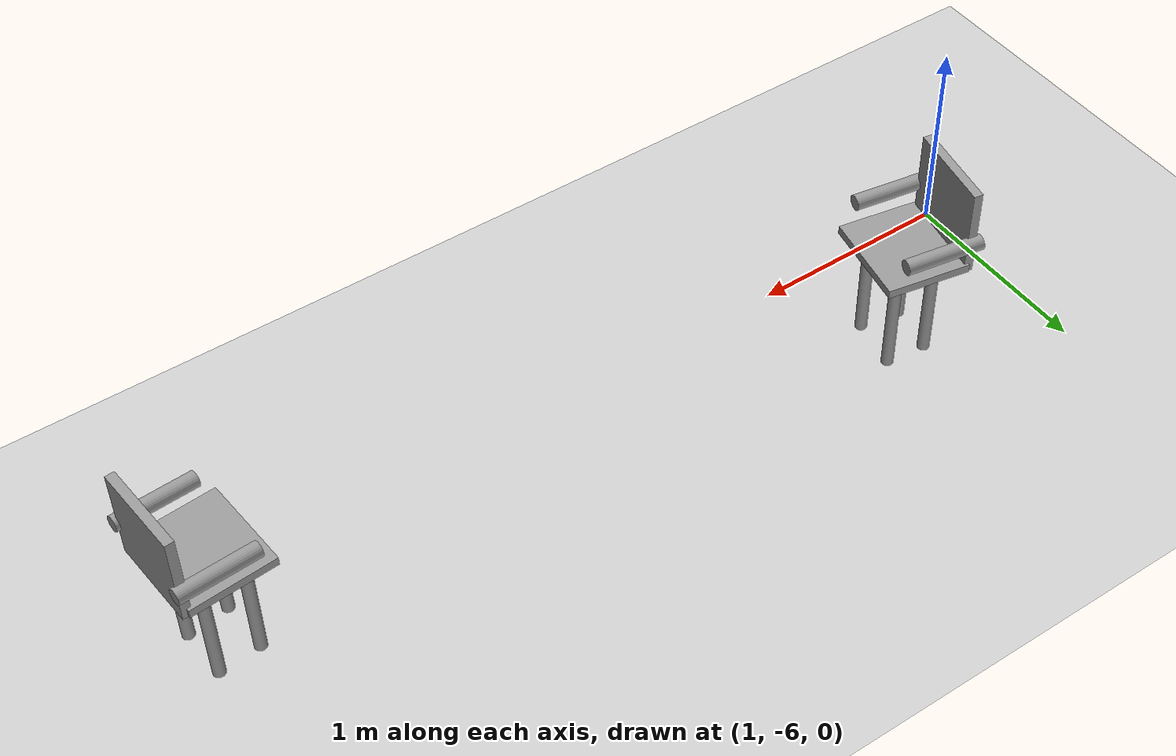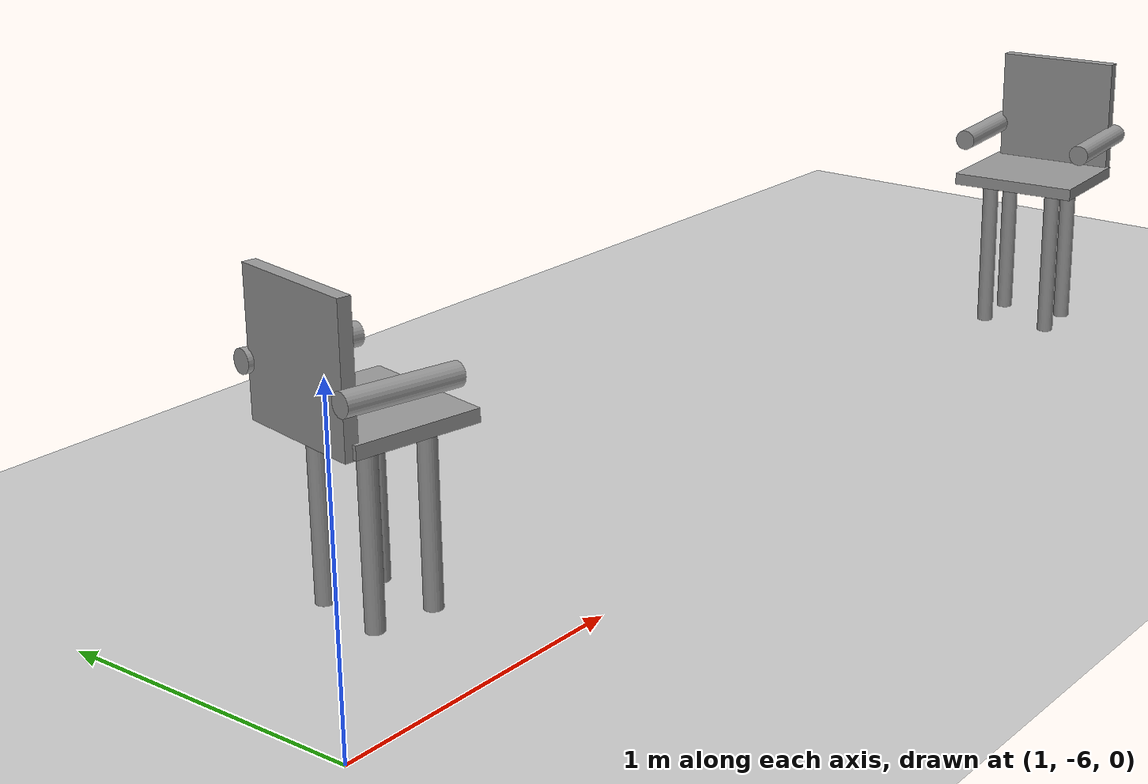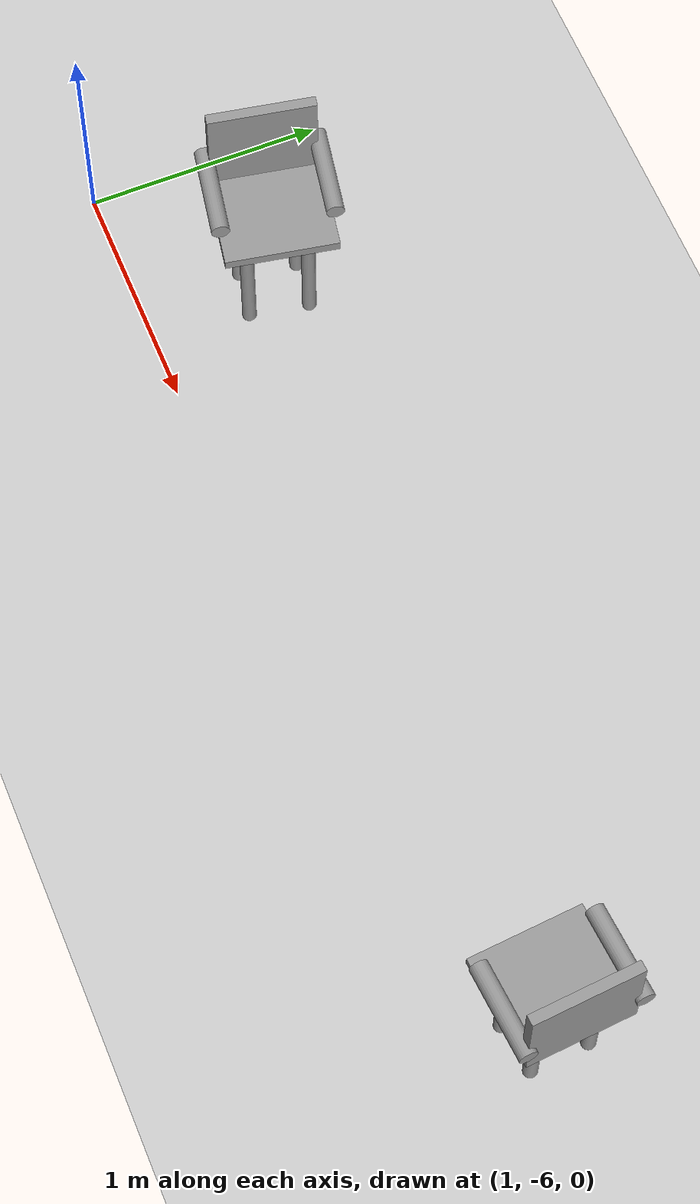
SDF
<sdf version="1.6">
 <world name="default">
  <model name="ground_plane">
   <static>1</static>
   <link name="link">
    <collision name="collision">
     <geometry><plane><normal>0 0 1</normal><size>100 100</size></plane></geometry>
     <surface>
      <contact><collide_bitmask>65535</collide_bitmask></contact>
      <friction><ode><mu>100</mu><mu2>50</mu2></ode></friction>
     </surface>
    </collision>
    <visual name="visual">
     <cast_shadows>0</cast_shadows>
     <geometry><plane><normal>0 0 1</normal><size>100 100</size></plane></geometry>
     <material>
      <script><uri>file://media/materials/scripts/gazebo.material</uri><name>Gazebo/Grey</name></script>
     </material>
    </visual>
   </link>
  </model>
  <model name="chair_clone_0_clone_2">
   <link name="link_4">
    <inertial>
     <mass>0.00194051</mass>
     <inertia>
      <ixx>5.14044e-05</ixx>
      <ixy>0</ixy>
      <ixz>0</ixz>
      <iyy>5.14044e-05</iyy>
      <iyz>0</iyz>
      <izz>8.34973e-07</izz>
     </inertia>
    </inertial>
    <pose>-0.140129 -0.127166 -0.209129 0 -0 0</pose>
    <visual name="visual">
     <geometry><cylinder><radius>0.0293355</radius><length>0.561516</length></cylinder></geometry>
     <material>
      <lighting>1</lighting>
      <script><uri>file://media/materials/scripts/gazebo.material</uri><name>Gazebo/Grey</name></script>
      <emissive>0 0 0 1</emissive>
     </material>
    </visual>
    <collision name="collision">
     <geometry><cylinder><radius>0.029336</radius><length>0.561516</length></cylinder></geometry>
     <surface>
      <friction>
       <ode><mu>1</mu><mu2>1</mu2><fdir1>0 0 0</fdir1><slip1>0</slip1><slip2>0</slip2></ode>
       <torsional>
        <coefficient>1</coefficient>
        <patch_radius>0</patch_radius>
        <surface_radius>0</surface_radius>
        <use_patch_radius>1</use_patch_radius>
        <ode><slip>0</slip></ode>
       </torsional>
      </friction>
      <bounce><restitution_coefficient>0</restitution_coefficient><threshold>1e+06</threshold></bounce>
      <contact>
       <collide_without_contact>0</collide_without_contact>
       <collide_without_contact_bitmask>1</collide_without_contact_bitmask>
       <collide_bitmask>1</collide_bitmask>
       <ode>
        <soft_cfm>0</soft_cfm>
        <soft_erp>0.2</soft_erp>
        <kp>1e+13</kp>
        <kd>1</kd>
        <max_vel>0.01</max_vel>
        <min_depth>0</min_depth>
       </ode>
       <bullet>
        <split_impulse>1</split_impulse>
        <split_impulse_penetration_threshold>-0.01</split_impulse_penetration_threshold>
        <soft_cfm>0</soft_cfm>
        <soft_erp>0.2</soft_erp>
        <kp>1e+13</kp>
        <kd>1</kd>
       </bullet>
      </contact>
     </surface>
    </collision>
   </link>
   <link name="link_4_clone">
    <inertial>
     <mass>0.00194051</mass>
     <inertia>
      <ixx>5.14044e-05</ixx>
      <ixy>0</ixy>
      <ixz>0</ixz>
      <iyy>5.14044e-05</iyy>
      <iyz>0</iyz>
      <izz>8.34973e-07</izz>
     </inertia>
    </inertial>
    <pose>-0.139565 0.126187 -0.209129 0 -0 0</pose>
    <visual name="visual">
     <geometry><cylinder><radius>0.0293355</radius><length>0.561516</length></cylinder></geometry>
     <material>
      <lighting>1</lighting>
      <script><uri>file://media/materials/scripts/gazebo.material</uri><name>Gazebo/Grey</name></script>
      <shader type="pixel"/>
      <emissive>0 0 0 1</emissive>
     </material>
    </visual>
    <collision name="collision">
     <geometry><cylinder><radius>0.029336</radius><length>0.561516</length></cylinder></geometry>
     <surface>
      <friction>
       <ode><mu>1</mu><mu2>1</mu2><fdir1>0 0 0</fdir1><slip1>0</slip1><slip2>0</slip2></ode>
       <torsional>
        <coefficient>1</coefficient>
        <patch_radius>0</patch_radius>
        <surface_radius>0</surface_radius>
        <use_patch_radius>1</use_patch_radius>
        <ode><slip>0</slip></ode>
       </torsional>
      </friction>
      <bounce><restitution_coefficient>0</restitution_coefficient><threshold>1e+06</threshold></bounce>
      <contact>
       <collide_without_contact>0</collide_without_contact>
       <collide_without_contact_bitmask>1</collide_without_contact_bitmask>
       <collide_bitmask>1</collide_bitmask>
       <ode>
        <soft_cfm>0</soft_cfm>
        <soft_erp>0.2</soft_erp>
        <kp>1e+13</kp>
        <kd>1</kd>
        <max_vel>0.01</max_vel>
        <min_depth>0</min_depth>
       </ode>
       <bullet>
        <split_impulse>1</split_impulse>
        <split_impulse_penetration_threshold>-0.01</split_impulse_penetration_threshold>
        <soft_cfm>0</soft_cfm>
        <soft_erp>0.2</soft_erp>
        <kp>1e+13</kp>
        <kd>1</kd>
       </bullet>
      </contact>
     </surface>
    </collision>
   </link>
   <link name="link_4_clone_0">
    <inertial>
     <mass>0.00194051</mass>
     <inertia>
      <ixx>5.14044e-05</ixx>
      <ixy>0</ixy>
      <ixz>0</ixz>
      <iyy>5.14044e-05</iyy>
      <iyz>0</iyz>
      <izz>8.34973e-07</izz>
     </inertia>
    </inertial>
    <pose>0.062929 0.13105 -0.209129 0 -0 0</pose>
    <visual name="visual">
     <geometry><cylinder><radius>0.0293355</radius><length>0.561516</length></cylinder></geometry>
     <material>
      <lighting>1</lighting>
      <script><uri>file://media/materials/scripts/gazebo.material</uri><name>Gazebo/Grey</name></script>
      <shader type="pixel"/>
      <emissive>0 0 0 1</emissive>
     </material>
    </visual>
    <collision name="collision">
     <geometry><cylinder><radius>0.029336</radius><length>0.561516</length></cylinder></geometry>
     <surface>
      <friction>
       <ode><mu>1</mu><mu2>1</mu2><fdir1>0 0 0</fdir1><slip1>0</slip1><slip2>0</slip2></ode>
       <torsional>
        <coefficient>1</coefficient>
        <patch_radius>0</patch_radius>
        <surface_radius>0</surface_radius>
        <use_patch_radius>1</use_patch_radius>
        <ode><slip>0</slip></ode>
       </torsional>
      </friction>
      <bounce><restitution_coefficient>0</restitution_coefficient><threshold>1e+06</threshold></bounce>
      <contact>
       <collide_without_contact>0</collide_without_contact>
       <collide_without_contact_bitmask>1</collide_without_contact_bitmask>
       <collide_bitmask>1</collide_bitmask>
       <ode>
        <soft_cfm>0</soft_cfm>
        <soft_erp>0.2</soft_erp>
        <kp>1e+13</kp>
        <kd>1</kd>
        <max_vel>0.01</max_vel>
        <min_depth>0</min_depth>
       </ode>
       <bullet>
        <split_impulse>1</split_impulse>
        <split_impulse_penetration_threshold>-0.01</split_impulse_penetration_threshold>
        <soft_cfm>0</soft_cfm>
        <soft_erp>0.2</soft_erp>
        <kp>1e+13</kp>
        <kd>1</kd>
       </bullet>
      </contact>
     </surface>
    </collision>
   </link>
   <link name="link_4_clone_1">
    <inertial>
     <mass>0.00194051</mass>
     <inertia>
      <ixx>5.14044e-05</ixx>
      <ixy>0</ixy>
      <ixz>0</ixz>
      <iyy>5.14044e-05</iyy>
      <iyz>0</iyz>
      <izz>8.34973e-07</izz>
     </inertia>
    </inertial>
    <pose>0.061641 -0.111934 -0.209129 0 -0 0</pose>
    <visual name="visual">
     <geometry><cylinder><radius>0.0293355</radius><length>0.561516</length></cylinder></geometry>
     <material>
      <lighting>1</lighting>
      <script><uri>file://media/materials/scripts/gazebo.material</uri><name>Gazebo/Grey</name></script>
      <shader type="pixel"/>
      <emissive>0 0 0 1</emissive>
     </material>
    </visual>
    <collision name="collision">
     <geometry><cylinder><radius>0.029336</radius><length>0.561516</length></cylinder></geometry>
     <surface>
      <friction>
       <ode><mu>1</mu><mu2>1</mu2><fdir1>0 0 0</fdir1><slip1>0</slip1><slip2>0</slip2></ode>
       <torsional>
        <coefficient>1</coefficient>
        <patch_radius>0</patch_radius>
        <surface_radius>0</surface_radius>
        <use_patch_radius>1</use_patch_radius>
        <ode><slip>0</slip></ode>
       </torsional>
      </friction>
      <bounce><restitution_coefficient>0</restitution_coefficient><threshold>1e+06</threshold></bounce>
      <contact>
       <collide_without_contact>0</collide_without_contact>
       <collide_without_contact_bitmask>1</collide_without_contact_bitmask>
       <collide_bitmask>1</collide_bitmask>
       <ode>
        <soft_cfm>0</soft_cfm>
        <soft_erp>0.2</soft_erp>
        <kp>1e+13</kp>
        <kd>1</kd>
        <max_vel>0.01</max_vel>
        <min_depth>0</min_depth>
       </ode>
       <bullet>
        <split_impulse>1</split_impulse>
        <split_impulse_penetration_threshold>-0.01</split_impulse_penetration_threshold>
        <soft_cfm>0</soft_cfm>
        <soft_erp>0.2</soft_erp>
        <kp>1e+13</kp>
        <kd>1</kd>
       </bullet>
      </contact>
     </surface>
    </collision>
   </link>
   <link name="link_5">
    <inertial>
     <mass>0.00816884</mass>
     <inertia>
      <ixx>0.00015002</ixx>
      <ixy>0</ixy>
      <ixz>0</ixz>
      <iyy>0.000115328</iyy>
      <iyz>0</iyz>
      <izz>0.000262862</izz>
     </inertia>
    </inertial>
    <pose>-0.041662 -0.005028 0.089077 0 -0 0</pose>
    <visual name="visual">
     <geometry><box><size>0.409378 0.467496 0.042729</size></box></geometry>
     <material>
      <lighting>1</lighting>
      <script><uri>file://media/materials/scripts/gazebo.material</uri><name>Gazebo/Grey</name></script>
      <emissive>0 0 0 1</emissive>
     </material>
    </visual>
    <collision name="collision">
     <geometry><box><size>0.409378 0.467496 0.042729</size></box></geometry>
     <surface>
      <friction>
       <ode><mu>1</mu><mu2>1</mu2><fdir1>0 0 0</fdir1><slip1>0</slip1><slip2>0</slip2></ode>
       <torsional>
        <coefficient>1</coefficient>
        <patch_radius>0</patch_radius>
        <surface_radius>0</surface_radius>
        <use_patch_radius>1</use_patch_radius>
        <ode><slip>0</slip></ode>
       </torsional>
      </friction>
      <bounce><restitution_coefficient>0</restitution_coefficient><threshold>1e+06</threshold></bounce>
      <contact>
       <collide_without_contact>0</collide_without_contact>
       <collide_without_contact_bitmask>1</collide_without_contact_bitmask>
       <collide_bitmask>1</collide_bitmask>
       <ode>
        <soft_cfm>0</soft_cfm>
        <soft_erp>0.2</soft_erp>
        <kp>1e+13</kp>
        <kd>1</kd>
        <max_vel>0.01</max_vel>
        <min_depth>0</min_depth>
       </ode>
       <bullet>
        <split_impulse>1</split_impulse>
        <split_impulse_penetration_threshold>-0.01</split_impulse_penetration_threshold>
        <soft_cfm>0</soft_cfm>
        <soft_erp>0.2</soft_erp>
        <kp>1e+13</kp>
        <kd>1</kd>
       </bullet>
      </contact>
     </surface>
    </collision>
   </link>
   <link name="link_6">
    <inertial>
     <mass>0.00855687</mass>
     <inertia>
      <ixx>0.000285159</ixx>
      <ixy>0</ixy>
      <ixz>0</ixz>
      <iyy>0.000146983</iyy>
      <iyz>0</iyz>
      <izz>0.000140925</izz>
     </inertia>
    </inertial>
    <pose>0.165697 -0.006458 0.287866 0 -0 0</pose>
    <visual name="visual">
     <geometry><box><size>0.0439 0.442383 0.451884</size></box></geometry>
     <material>
      <lighting>1</lighting>
      <script><uri>file://media/materials/scripts/gazebo.material</uri><name>Gazebo/Grey</name></script>
      <emissive>0 0 0 1</emissive>
     </material>
    </visual>
    <collision name="collision">
     <geometry><box><size>0.0439 0.442383 0.451884</size></box></geometry>
     <surface>
      <friction>
       <ode><mu>1</mu><mu2>1</mu2><fdir1>0 0 0</fdir1><slip1>0</slip1><slip2>0</slip2></ode>
       <torsional>
        <coefficient>1</coefficient>
        <patch_radius>0</patch_radius>
        <surface_radius>0</surface_radius>
        <use_patch_radius>1</use_patch_radius>
        <ode><slip>0</slip></ode>
       </torsional>
      </friction>
      <bounce><restitution_coefficient>0</restitution_coefficient><threshold>1e+06</threshold></bounce>
      <contact>
       <collide_without_contact>0</collide_without_contact>
       <collide_without_contact_bitmask>1</collide_without_contact_bitmask>
       <collide_bitmask>1</collide_bitmask>
       <ode>
        <soft_cfm>0</soft_cfm>
        <soft_erp>0.2</soft_erp>
        <kp>1e+13</kp>
        <kd>1</kd>
        <max_vel>0.01</max_vel>
        <min_depth>0</min_depth>
       </ode>
       <bullet>
        <split_impulse>1</split_impulse>
        <split_impulse_penetration_threshold>-0.01</split_impulse_penetration_threshold>
        <soft_cfm>0</soft_cfm>
        <soft_erp>0.2</soft_erp>
        <kp>1e+13</kp>
        <kd>1</kd>
       </bullet>
      </contact>
     </surface>
    </collision>
   </link>
   <link name="link_7">
    <inertial>
     <mass>0.00209129</mass>
     <inertia>
      <ixx>2.57536e-05</ixx>
      <ixy>0</ixy>
      <ixz>0</ixz>
      <iyy>2.57536e-05</iyy>
      <iyz>0</iyz>
      <izz>1.44551e-06</izz>
     </inertia>
    </inertial>
    <pose>0.0147 0.228665 0.230372 0 1.55081 0</pose>
    <visual name="visual">
     <geometry><cylinder><radius>0.0371808</radius><length>0.378984</length></cylinder></geometry>
     <material>
      <lighting>1</lighting>
      <script><uri>file://media/materials/scripts/gazebo.material</uri><name>Gazebo/Grey</name></script>
      <emissive>0 0 0 1</emissive>
     </material>
    </visual>
    <collision name="collision">
     <geometry><cylinder><radius>0.037181</radius><length>0.378984</length></cylinder></geometry>
     <surface>
      <friction>
       <ode><mu>1</mu><mu2>1</mu2><fdir1>0 0 0</fdir1><slip1>0</slip1><slip2>0</slip2></ode>
       <torsional>
        <coefficient>1</coefficient>
        <patch_radius>0</patch_radius>
        <surface_radius>0</surface_radius>
        <use_patch_radius>1</use_patch_radius>
        <ode><slip>0</slip></ode>
       </torsional>
      </friction>
      <bounce><restitution_coefficient>0</restitution_coefficient><threshold>1e+06</threshold></bounce>
      <contact>
       <collide_without_contact>0</collide_without_contact>
       <collide_without_contact_bitmask>1</collide_without_contact_bitmask>
       <collide_bitmask>1</collide_bitmask>
       <ode>
        <soft_cfm>0</soft_cfm>
        <soft_erp>0.2</soft_erp>
        <kp>1e+13</kp>
        <kd>1</kd>
        <max_vel>0.01</max_vel>
        <min_depth>0</min_depth>
       </ode>
       <bullet>
        <split_impulse>1</split_impulse>
        <split_impulse_penetration_threshold>-0.01</split_impulse_penetration_threshold>
        <soft_cfm>0</soft_cfm>
        <soft_erp>0.2</soft_erp>
        <kp>1e+13</kp>
        <kd>1</kd>
       </bullet>
      </contact>
     </surface>
    </collision>
   </link>
   <link name="link_7_clone">
    <inertial>
     <mass>0.00209129</mass>
     <inertia>
      <ixx>2.57536e-05</ixx>
      <ixy>0</ixy>
      <ixz>0</ixz>
      <iyy>2.57536e-05</iyy>
      <iyz>0</iyz>
      <izz>1.44551e-06</izz>
     </inertia>
    </inertial>
    <pose>0.01639 -0.235319 0.229201 0 1.55081 0</pose>
    <visual name="visual">
     <geometry><cylinder><radius>0.0371808</radius><length>0.378984</length></cylinder></geometry>
     <material>
      <lighting>1</lighting>
      <script><uri>file://media/materials/scripts/gazebo.material</uri><name>Gazebo/Grey</name></script>
      <shader type="pixel"/>
      <emissive>0 0 0 1</emissive>
     </material>
    </visual>
    <collision name="collision">
     <geometry><cylinder><radius>0.037181</radius><length>0.378984</length></cylinder></geometry>
     <surface>
      <friction>
       <ode><mu>1</mu><mu2>1</mu2><fdir1>0 0 0</fdir1><slip1>0</slip1><slip2>0</slip2></ode>
       <torsional>
        <coefficient>1</coefficient>
        <patch_radius>0</patch_radius>
        <surface_radius>0</surface_radius>
        <use_patch_radius>1</use_patch_radius>
        <ode><slip>0</slip></ode>
       </torsional>
      </friction>
      <bounce><restitution_coefficient>0</restitution_coefficient><threshold>1e+06</threshold></bounce>
      <contact>
       <collide_without_contact>0</collide_without_contact>
       <collide_without_contact_bitmask>1</collide_without_contact_bitmask>
       <collide_bitmask>1</collide_bitmask>
       <ode>
        <soft_cfm>0</soft_cfm>
        <soft_erp>0.2</soft_erp>
        <kp>1e+13</kp>
        <kd>1</kd>
        <max_vel>0.01</max_vel>
        <min_depth>0</min_depth>
       </ode>
       <bullet>
        <split_impulse>1</split_impulse>
        <split_impulse_penetration_threshold>-0.01</split_impulse_penetration_threshold>
        <soft_cfm>0</soft_cfm>
        <soft_erp>0.2</soft_erp>
        <kp>1e+13</kp>
        <kd>1</kd>
       </bullet>
      </contact>
     </surface>
    </collision>
   </link>
   <joint name="link_5_JOINT_2" type="fixed">
    <parent>link_5</parent>
    <child>link_4_clone_1</child>
    <physics>
     <ode><limit><cfm>0</cfm><erp>0.2</erp></limit><suspension><cfm>0</cfm><erp>0.2</erp></suspension></ode>
    </physics>
   </joint>
   <joint name="link_5_JOINT_3" type="fixed">
    <parent>link_5</parent>
    <child>link_4</child>
    <physics>
     <ode><limit><cfm>0</cfm><erp>0.2</erp></limit><suspension><cfm>0</cfm><erp>0.2</erp></suspension></ode>
    </physics>
   </joint>
   <joint name="link_5_JOINT_4" type="fixed">
    <parent>link_5</parent>
    <child>link_4_clone_0</child>
    <physics>
     <ode><limit><cfm>0</cfm><erp>0.2</erp></limit><suspension><cfm>0</cfm><erp>0.2</erp></suspension></ode>
    </physics>
   </joint>
   <joint name="link_5_JOINT_5" type="fixed">
    <parent>link_5</parent>
    <child>link_4_clone</child>
    <physics>
     <ode><limit><cfm>0</cfm><erp>0.2</erp></limit><suspension><cfm>0</cfm><erp>0.2</erp></suspension></ode>
    </physics>
   </joint>
   <joint name="link_5_JOINT_6" type="fixed">
    <parent>link_5</parent>
    <child>link_6</child>
    <physics>
     <ode><limit><cfm>0</cfm><erp>0.2</erp></limit><suspension><cfm>0</cfm><erp>0.2</erp></suspension></ode>
    </physics>
   </joint>
   <joint name="link_5_JOINT_7" type="fixed">
    <parent>link_5</parent>
    <child>link_7</child>
    <physics>
     <ode><limit><cfm>0</cfm><erp>0.2</erp></limit><suspension><cfm>0</cfm><erp>0.2</erp></suspension></ode>
    </physics>
   </joint>
   <joint name="link_5_JOINT_8" type="fixed">
    <parent>link_5</parent>
    <child>link_7_clone</child>
    <physics>
     <ode><limit><cfm>0</cfm><erp>0.2</erp></limit><suspension><cfm>0</cfm><erp>0.2</erp></suspension></ode>
    </physics>
   </joint>
   <static>0</static>
   <pose>1.64641 -5.43878 0.489878 1e-06 3.1e-05 2.95907</pose>
  </model>
  <model name="chair_clone_7">
   <link name="link_4">
    <inertial>
     <mass>0.00194051</mass>
     <inertia>
      <ixx>5.14044e-05</ixx>
      <ixy>0</ixy>
      <ixz>0</ixz>
      <iyy>5.14044e-05</iyy>
      <iyz>0</iyz>
      <izz>8.34973e-07</izz>
     </inertia>
    </inertial>
    <pose>-0.140129 -0.127166 -0.209129 0 -0 0</pose>
    <visual name="visual">
     <geometry><cylinder><radius>0.0293355</radius><length>0.561516</length></cylinder></geometry>
     <material>
      <lighting>1</lighting>
      <script><uri>file://media/materials/scripts/gazebo.material</uri><name>Gazebo/Grey</name></script>
      <emissive>0 0 0 1</emissive>
     </material>
    </visual>
    <collision name="collision">
     <geometry><cylinder><radius>0.029336</radius><length>0.561516</length></cylinder></geometry>
     <surface>
      <friction>
       <ode><mu>1</mu><mu2>1</mu2><fdir1>0 0 0</fdir1><slip1>0</slip1><slip2>0</slip2></ode>
       <torsional>
        <coefficient>1</coefficient>
        <patch_radius>0</patch_radius>
        <surface_radius>0</surface_radius>
        <use_patch_radius>1</use_patch_radius>
        <ode><slip>0</slip></ode>
       </torsional>
      </friction>
      <bounce><restitution_coefficient>0</restitution_coefficient><threshold>1e+06</threshold></bounce>
      <contact>
       <collide_without_contact>0</collide_without_contact>
       <collide_without_contact_bitmask>1</collide_without_contact_bitmask>
       <collide_bitmask>1</collide_bitmask>
       <ode>
        <soft_cfm>0</soft_cfm>
        <soft_erp>0.2</soft_erp>
        <kp>1e+13</kp>
        <kd>1</kd>
        <max_vel>0.01</max_vel>
        <min_depth>0</min_depth>
       </ode>
       <bullet>
        <split_impulse>1</split_impulse>
        <split_impulse_penetration_threshold>-0.01</split_impulse_penetration_threshold>
        <soft_cfm>0</soft_cfm>
        <soft_erp>0.2</soft_erp>
        <kp>1e+13</kp>
        <kd>1</kd>
       </bullet>
      </contact>
     </surface>
    </collision>
   </link>
   <link name="link_4_clone">
    <inertial>
     <mass>0.00194051</mass>
     <inertia>
      <ixx>5.14044e-05</ixx>
      <ixy>0</ixy>
      <ixz>0</ixz>
      <iyy>5.14044e-05</iyy>
      <iyz>0</iyz>
      <izz>8.34973e-07</izz>
     </inertia>
    </inertial>
    <pose>-0.139565 0.126187 -0.209129 0 -0 0</pose>
    <visual name="visual">
     <geometry><cylinder><radius>0.0293355</radius><length>0.561516</length></cylinder></geometry>
     <material>
      <lighting>1</lighting>
      <script><uri>file://media/materials/scripts/gazebo.material</uri><name>Gazebo/Grey</name></script>
      <shader type="pixel"/>
      <emissive>0 0 0 1</emissive>
     </material>
    </visual>
    <collision name="collision">
     <geometry><cylinder><radius>0.029336</radius><length>0.561516</length></cylinder></geometry>
     <surface>
      <friction>
       <ode><mu>1</mu><mu2>1</mu2><fdir1>0 0 0</fdir1><slip1>0</slip1><slip2>0</slip2></ode>
       <torsional>
        <coefficient>1</coefficient>
        <patch_radius>0</patch_radius>
        <surface_radius>0</surface_radius>
        <use_patch_radius>1</use_patch_radius>
        <ode><slip>0</slip></ode>
       </torsional>
      </friction>
      <bounce><restitution_coefficient>0</restitution_coefficient><threshold>1e+06</threshold></bounce>
      <contact>
       <collide_without_contact>0</collide_without_contact>
       <collide_without_contact_bitmask>1</collide_without_contact_bitmask>
       <collide_bitmask>1</collide_bitmask>
       <ode>
        <soft_cfm>0</soft_cfm>
        <soft_erp>0.2</soft_erp>
        <kp>1e+13</kp>
        <kd>1</kd>
        <max_vel>0.01</max_vel>
        <min_depth>0</min_depth>
       </ode>
       <bullet>
        <split_impulse>1</split_impulse>
        <split_impulse_penetration_threshold>-0.01</split_impulse_penetration_threshold>
        <soft_cfm>0</soft_cfm>
        <soft_erp>0.2</soft_erp>
        <kp>1e+13</kp>
        <kd>1</kd>
       </bullet>
      </contact>
     </surface>
    </collision>
   </link>
   <link name="link_4_clone_0">
    <inertial>
     <mass>0.00194051</mass>
     <inertia>
      <ixx>5.14044e-05</ixx>
      <ixy>0</ixy>
      <ixz>0</ixz>
      <iyy>5.14044e-05</iyy>
      <iyz>0</iyz>
      <izz>8.34973e-07</izz>
     </inertia>
    </inertial>
    <pose>0.062929 0.13105 -0.209129 0 -0 0</pose>
    <visual name="visual">
     <geometry><cylinder><radius>0.0293355</radius><length>0.561516</length></cylinder></geometry>
     <material>
      <lighting>1</lighting>
      <script><uri>file://media/materials/scripts/gazebo.material</uri><name>Gazebo/Grey</name></script>
      <shader type="pixel"/>
      <emissive>0 0 0 1</emissive>
     </material>
    </visual>
    <collision name="collision">
     <geometry><cylinder><radius>0.029336</radius><length>0.561516</length></cylinder></geometry>
     <surface>
      <friction>
       <ode><mu>1</mu><mu2>1</mu2><fdir1>0 0 0</fdir1><slip1>0</slip1><slip2>0</slip2></ode>
       <torsional>
        <coefficient>1</coefficient>
        <patch_radius>0</patch_radius>
        <surface_radius>0</surface_radius>
        <use_patch_radius>1</use_patch_radius>
        <ode><slip>0</slip></ode>
       </torsional>
      </friction>
      <bounce><restitution_coefficient>0</restitution_coefficient><threshold>1e+06</threshold></bounce>
      <contact>
       <collide_without_contact>0</collide_without_contact>
       <collide_without_contact_bitmask>1</collide_without_contact_bitmask>
       <collide_bitmask>1</collide_bitmask>
       <ode>
        <soft_cfm>0</soft_cfm>
        <soft_erp>0.2</soft_erp>
        <kp>1e+13</kp>
        <kd>1</kd>
        <max_vel>0.01</max_vel>
        <min_depth>0</min_depth>
       </ode>
       <bullet>
        <split_impulse>1</split_impulse>
        <split_impulse_penetration_threshold>-0.01</split_impulse_penetration_threshold>
        <soft_cfm>0</soft_cfm>
        <soft_erp>0.2</soft_erp>
        <kp>1e+13</kp>
        <kd>1</kd>
       </bullet>
      </contact>
     </surface>
    </collision>
   </link>
   <link name="link_4_clone_1">
    <inertial>
     <mass>0.00194051</mass>
     <inertia>
      <ixx>5.14044e-05</ixx>
      <ixy>0</ixy>
      <ixz>0</ixz>
      <iyy>5.14044e-05</iyy>
      <iyz>0</iyz>
      <izz>8.34973e-07</izz>
     </inertia>
    </inertial>
    <pose>0.061641 -0.111934 -0.209129 0 -0 0</pose>
    <visual name="visual">
     <geometry><cylinder><radius>0.0293355</radius><length>0.561516</length></cylinder></geometry>
     <material>
      <lighting>1</lighting>
      <script><uri>file://media/materials/scripts/gazebo.material</uri><name>Gazebo/Grey</name></script>
      <shader type="pixel"/>
      <emissive>0 0 0 1</emissive>
     </material>
    </visual>
    <collision name="collision">
     <geometry><cylinder><radius>0.029336</radius><length>0.561516</length></cylinder></geometry>
     <surface>
      <friction>
       <ode><mu>1</mu><mu2>1</mu2><fdir1>0 0 0</fdir1><slip1>0</slip1><slip2>0</slip2></ode>
       <torsional>
        <coefficient>1</coefficient>
        <patch_radius>0</patch_radius>
        <surface_radius>0</surface_radius>
        <use_patch_radius>1</use_patch_radius>
        <ode><slip>0</slip></ode>
       </torsional>
      </friction>
      <bounce><restitution_coefficient>0</restitution_coefficient><threshold>1e+06</threshold></bounce>
      <contact>
       <collide_without_contact>0</collide_without_contact>
       <collide_without_contact_bitmask>1</collide_without_contact_bitmask>
       <collide_bitmask>1</collide_bitmask>
       <ode>
        <soft_cfm>0</soft_cfm>
        <soft_erp>0.2</soft_erp>
        <kp>1e+13</kp>
        <kd>1</kd>
        <max_vel>0.01</max_vel>
        <min_depth>0</min_depth>
       </ode>
       <bullet>
        <split_impulse>1</split_impulse>
        <split_impulse_penetration_threshold>-0.01</split_impulse_penetration_threshold>
        <soft_cfm>0</soft_cfm>
        <soft_erp>0.2</soft_erp>
        <kp>1e+13</kp>
        <kd>1</kd>
       </bullet>
      </contact>
     </surface>
    </collision>
   </link>
   <link name="link_5">
    <inertial>
     <mass>0.00816884</mass>
     <inertia>
      <ixx>0.00015002</ixx>
      <ixy>0</ixy>
      <ixz>0</ixz>
      <iyy>0.000115328</iyy>
      <iyz>0</iyz>
      <izz>0.000262862</izz>
     </inertia>
    </inertial>
    <pose>-0.041662 -0.005028 0.089077 0 -0 0</pose>
    <visual name="visual">
     <geometry><box><size>0.409378 0.467496 0.042729</size></box></geometry>
     <material>
      <lighting>1</lighting>
      <script><uri>file://media/materials/scripts/gazebo.material</uri><name>Gazebo/Grey</name></script>
      <emissive>0 0 0 1</emissive>
     </material>
    </visual>
    <collision name="collision">
     <geometry><box><size>0.409378 0.467496 0.042729</size></box></geometry>
     <surface>
      <friction>
       <ode><mu>1</mu><mu2>1</mu2><fdir1>0 0 0</fdir1><slip1>0</slip1><slip2>0</slip2></ode>
       <torsional>
        <coefficient>1</coefficient>
        <patch_radius>0</patch_radius>
        <surface_radius>0</surface_radius>
        <use_patch_radius>1</use_patch_radius>
        <ode><slip>0</slip></ode>
       </torsional>
      </friction>
      <bounce><restitution_coefficient>0</restitution_coefficient><threshold>1e+06</threshold></bounce>
      <contact>
       <collide_without_contact>0</collide_without_contact>
       <collide_without_contact_bitmask>1</collide_without_contact_bitmask>
       <collide_bitmask>1</collide_bitmask>
       <ode>
        <soft_cfm>0</soft_cfm>
        <soft_erp>0.2</soft_erp>
        <kp>1e+13</kp>
        <kd>1</kd>
        <max_vel>0.01</max_vel>
        <min_depth>0</min_depth>
       </ode>
       <bullet>
        <split_impulse>1</split_impulse>
        <split_impulse_penetration_threshold>-0.01</split_impulse_penetration_threshold>
        <soft_cfm>0</soft_cfm>
        <soft_erp>0.2</soft_erp>
        <kp>1e+13</kp>
        <kd>1</kd>
       </bullet>
      </contact>
     </surface>
    </collision>
   </link>
   <link name="link_6">
    <inertial>
     <mass>0.00855687</mass>
     <inertia>
      <ixx>0.000285159</ixx>
      <ixy>0</ixy>
      <ixz>0</ixz>
      <iyy>0.000146983</iyy>
      <iyz>0</iyz>
      <izz>0.000140925</izz>
     </inertia>
    </inertial>
    <pose>0.165697 -0.006458 0.287866 0 -0 0</pose>
    <visual name="visual">
     <geometry><box><size>0.0439 0.442383 0.451884</size></box></geometry>
     <material>
      <lighting>1</lighting>
      <script><uri>file://media/materials/scripts/gazebo.material</uri><name>Gazebo/Grey</name></script>
      <emissive>0 0 0 1</emissive>
     </material>
    </visual>
    <collision name="collision">
     <geometry><box><size>0.0439 0.442383 0.451884</size></box></geometry>
     <surface>
      <friction>
       <ode><mu>1</mu><mu2>1</mu2><fdir1>0 0 0</fdir1><slip1>0</slip1><slip2>0</slip2></ode>
       <torsional>
        <coefficient>1</coefficient>
        <patch_radius>0</patch_radius>
        <surface_radius>0</surface_radius>
        <use_patch_radius>1</use_patch_radius>
        <ode><slip>0</slip></ode>
       </torsional>
      </friction>
      <bounce><restitution_coefficient>0</restitution_coefficient><threshold>1e+06</threshold></bounce>
      <contact>
       <collide_without_contact>0</collide_without_contact>
       <collide_without_contact_bitmask>1</collide_without_contact_bitmask>
       <collide_bitmask>1</collide_bitmask>
       <ode>
        <soft_cfm>0</soft_cfm>
        <soft_erp>0.2</soft_erp>
        <kp>1e+13</kp>
        <kd>1</kd>
        <max_vel>0.01</max_vel>
        <min_depth>0</min_depth>
       </ode>
       <bullet>
        <split_impulse>1</split_impulse>
        <split_impulse_penetration_threshold>-0.01</split_impulse_penetration_threshold>
        <soft_cfm>0</soft_cfm>
        <soft_erp>0.2</soft_erp>
        <kp>1e+13</kp>
        <kd>1</kd>
       </bullet>
      </contact>
     </surface>
    </collision>
   </link>
   <link name="link_7">
    <inertial>
     <mass>0.00209129</mass>
     <inertia>
      <ixx>2.57536e-05</ixx>
      <ixy>0</ixy>
      <ixz>0</ixz>
      <iyy>2.57536e-05</iyy>
      <iyz>0</iyz>
      <izz>1.44551e-06</izz>
     </inertia>
    </inertial>
    <pose>0.0147 0.228665 0.230372 0 1.55081 0</pose>
    <visual name="visual">
     <geometry><cylinder><radius>0.0371808</radius><length>0.378984</length></cylinder></geometry>
     <material>
      <lighting>1</lighting>
      <script><uri>file://media/materials/scripts/gazebo.material</uri><name>Gazebo/Grey</name></script>
      <emissive>0 0 0 1</emissive>
     </material>
    </visual>
    <collision name="collision">
     <geometry><cylinder><radius>0.037181</radius><length>0.378984</length></cylinder></geometry>
     <surface>
      <friction>
       <ode><mu>1</mu><mu2>1</mu2><fdir1>0 0 0</fdir1><slip1>0</slip1><slip2>0</slip2></ode>
       <torsional>
        <coefficient>1</coefficient>
        <patch_radius>0</patch_radius>
        <surface_radius>0</surface_radius>
        <use_patch_radius>1</use_patch_radius>
        <ode><slip>0</slip></ode>
       </torsional>
      </friction>
      <bounce><restitution_coefficient>0</restitution_coefficient><threshold>1e+06</threshold></bounce>
      <contact>
       <collide_without_contact>0</collide_without_contact>
       <collide_without_contact_bitmask>1</collide_without_contact_bitmask>
       <collide_bitmask>1</collide_bitmask>
       <ode>
        <soft_cfm>0</soft_cfm>
        <soft_erp>0.2</soft_erp>
        <kp>1e+13</kp>
        <kd>1</kd>
        <max_vel>0.01</max_vel>
        <min_depth>0</min_depth>
       </ode>
       <bullet>
        <split_impulse>1</split_impulse>
        <split_impulse_penetration_threshold>-0.01</split_impulse_penetration_threshold>
        <soft_cfm>0</soft_cfm>
        <soft_erp>0.2</soft_erp>
        <kp>1e+13</kp>
        <kd>1</kd>
       </bullet>
      </contact>
     </surface>
    </collision>
   </link>
   <link name="link_7_clone">
    <inertial>
     <mass>0.00209129</mass>
     <inertia>
      <ixx>2.57536e-05</ixx>
      <ixy>0</ixy>
      <ixz>0</ixz>
      <iyy>2.57536e-05</iyy>
      <iyz>0</iyz>
      <izz>1.44551e-06</izz>
     </inertia>
    </inertial>
    <pose>0.01639 -0.235319 0.229201 0 1.55081 0</pose>
    <visual name="visual">
     <geometry><cylinder><radius>0.0371808</radius><length>0.378984</length></cylinder></geometry>
     <material>
      <lighting>1</lighting>
      <script><uri>file://media/materials/scripts/gazebo.material</uri><name>Gazebo/Grey</name></script>
      <shader type="pixel"/>
      <emissive>0 0 0 1</emissive>
     </material>
    </visual>
    <collision name="collision">
     <geometry><cylinder><radius>0.037181</radius><length>0.378984</length></cylinder></geometry>
     <surface>
      <friction>
       <ode><mu>1</mu><mu2>1</mu2><fdir1>0 0 0</fdir1><slip1>0</slip1><slip2>0</slip2></ode>
       <torsional>
        <coefficient>1</coefficient>
        <patch_radius>0</patch_radius>
        <surface_radius>0</surface_radius>
        <use_patch_radius>1</use_patch_radius>
        <ode><slip>0</slip></ode>
       </torsional>
      </friction>
      <bounce><restitution_coefficient>0</restitution_coefficient><threshold>1e+06</threshold></bounce>
      <contact>
       <collide_without_contact>0</collide_without_contact>
       <collide_without_contact_bitmask>1</collide_without_contact_bitmask>
       <collide_bitmask>1</collide_bitmask>
       <ode>
        <soft_cfm>0</soft_cfm>
        <soft_erp>0.2</soft_erp>
        <kp>1e+13</kp>
        <kd>1</kd>
        <max_vel>0.01</max_vel>
        <min_depth>0</min_depth>
       </ode>
       <bullet>
        <split_impulse>1</split_impulse>
        <split_impulse_penetration_threshold>-0.01</split_impulse_penetration_threshold>
        <soft_cfm>0</soft_cfm>
        <soft_erp>0.2</soft_erp>
        <kp>1e+13</kp>
        <kd>1</kd>
       </bullet>
      </contact>
     </surface>
    </collision>
   </link>
   <joint name="link_5_JOINT_2" type="fixed">
    <parent>link_5</parent>
    <child>link_4_clone_1</child>
    <physics>
     <ode><limit><cfm>0</cfm><erp>0.2</erp></limit><suspension><cfm>0</cfm><erp>0.2</erp></suspension></ode>
    </physics>
   </joint>
   <joint name="link_5_JOINT_3" type="fixed">
    <parent>link_5</parent>
    <child>link_4</child>
    <physics>
     <ode><limit><cfm>0</cfm><erp>0.2</erp></limit><suspension><cfm>0</cfm><erp>0.2</erp></suspension></ode>
    </physics>
   </joint>
   <joint name="link_5_JOINT_4" type="fixed">
    <parent>link_5</parent>
    <child>link_4_clone_0</child>
    <physics>
     <ode><limit><cfm>0</cfm><erp>0.2</erp></limit><suspension><cfm>0</cfm><erp>0.2</erp></suspension></ode>
    </physics>
   </joint>
   <joint name="link_5_JOINT_5" type="fixed">
    <parent>link_5</parent>
    <child>link_4_clone</child>
    <physics>
     <ode><limit><cfm>0</cfm><erp>0.2</erp></limit><suspension><cfm>0</cfm><erp>0.2</erp></suspension></ode>
    </physics>
   </joint>
   <joint name="link_5_JOINT_6" type="fixed">
    <parent>link_5</parent>
    <child>link_6</child>
    <physics>
     <ode><limit><cfm>0</cfm><erp>0.2</erp></limit><suspension><cfm>0</cfm><erp>0.2</erp></suspension></ode>
    </physics>
   </joint>
   <joint name="link_5_JOINT_7" type="fixed">
    <parent>link_5</parent>
    <child>link_7</child>
    <physics>
     <ode><limit><cfm>0</cfm><erp>0.2</erp></limit><suspension><cfm>0</cfm><erp>0.2</erp></suspension></ode>
    </physics>
   </joint>
   <joint name="link_5_JOINT_8" type="fixed">
    <parent>link_5</parent>
    <child>link_7_clone</child>
    <physics>
     <ode><limit><cfm>0</cfm><erp>0.2</erp></limit><suspension><cfm>0</cfm><erp>0.2</erp></suspension></ode>
    </physics>
   </joint>
   <static>0</static>
   <pose>5.11054 -5.70546 0.489878 0 3.3e-05 0.076595</pose>
  </model>
 </world>
</sdf>
